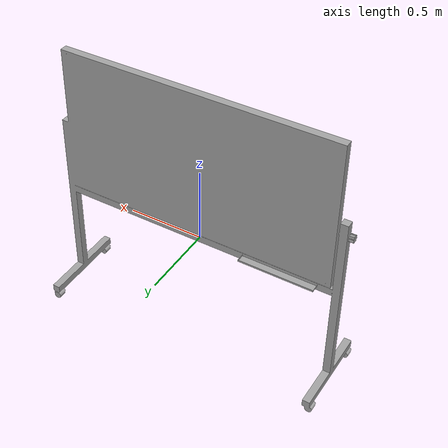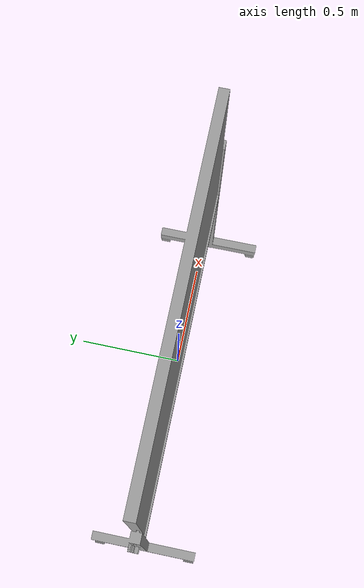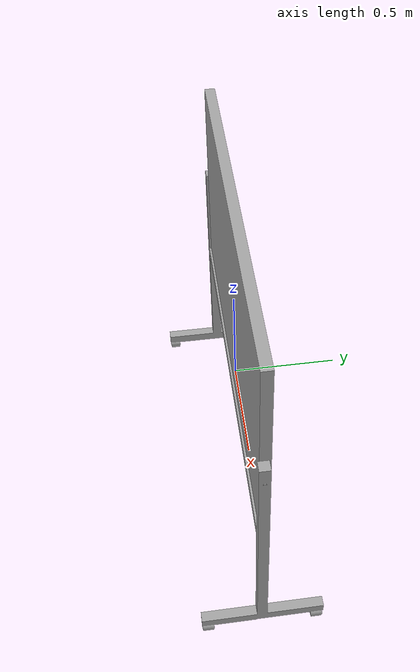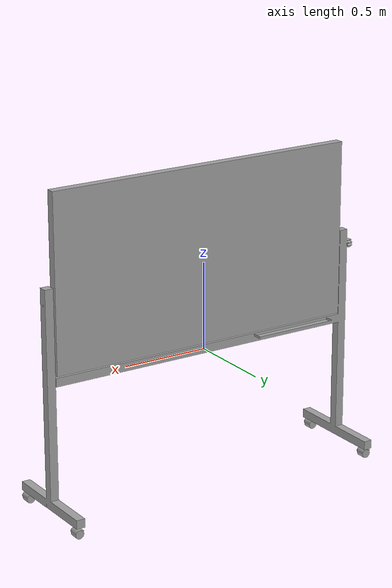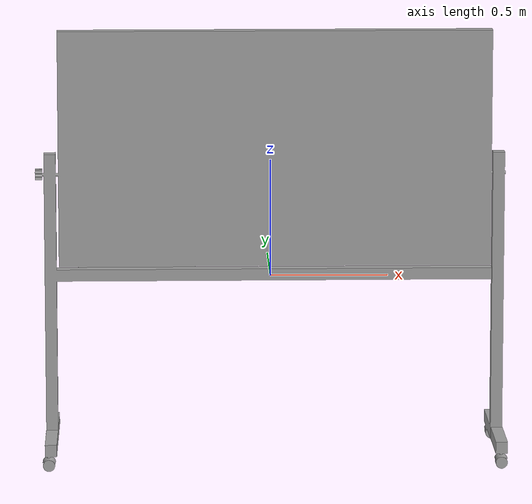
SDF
<?xml version='1.0'?>
<sdf version='1.5'>
    <model name="whiteboard_stand">
        <pose>0 0 0 0 0 0</pose>
        <static>false</static>
        <link name='model_body'>
            <visual name="visual">
                <geometry>
                    <mesh>
                        <uri>model://robert_gazebo/meshes/visual_blackboard_stand.dae</uri>
                        <scale>1 1 1</scale>
                    </mesh>
                </geometry>
            </visual>

            <collision name="collision">
                <geometry>
                    <mesh>
                        <uri>model://robert_gazebo/meshes/collision_board_stand.dae</uri>
                        <scale>0.01 0.01 0.01</scale>
                    </mesh>
                </geometry>
            </collision>

            <inertial>
                <pose> 0 0 0 0 0 0</pose>
                <inertia>
                    <ixx>0.98</ixx>
                    <ixy>0</ixy>
                    <ixz>0</ixz>
                    <iyy>0.88</iyy>
                    <iyz>0</iyz>
                    <izz>0.69</izz>
                </inertia>
                <mass>10.0</mass>
            </inertial>
        </link>
    </model>
</sdf>
